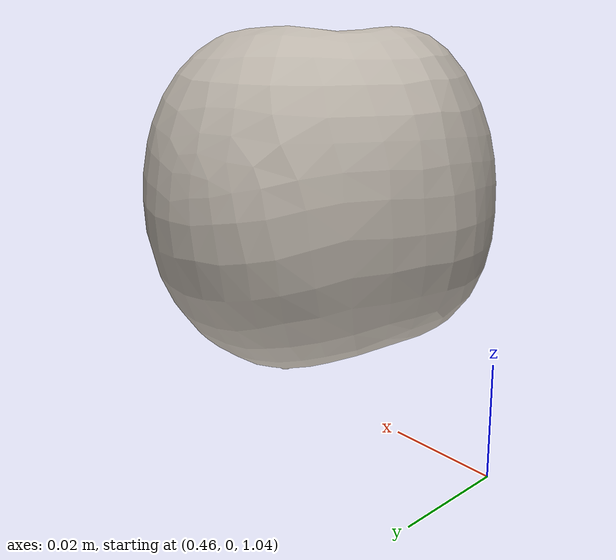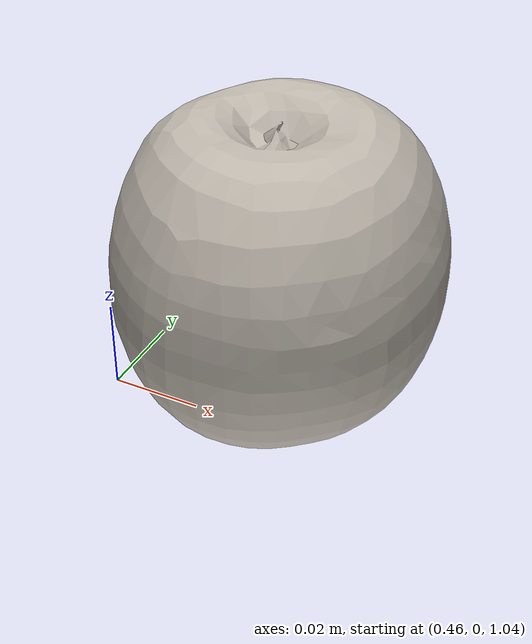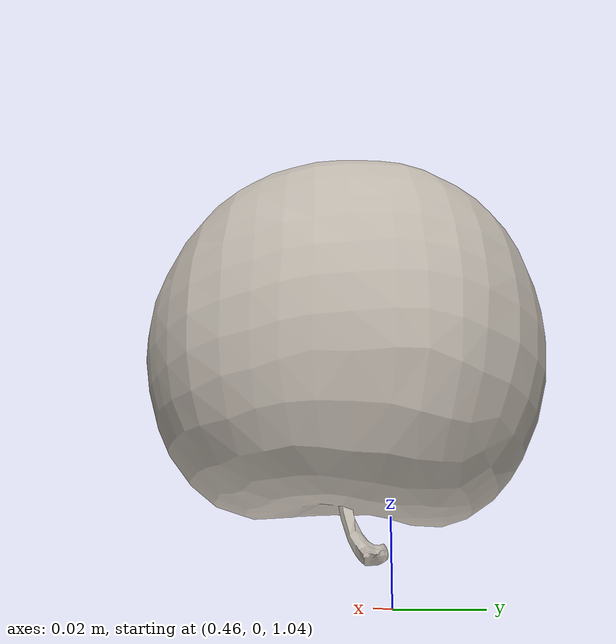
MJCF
<mujoco model="apple_12">
  <asset>
    <mesh file="bigym/apple_6/visual/model_normalized_0.obj" name="model_normalized_0_vis" scale="0.07 0.07 0.07" refquat="1.0 0.0 0.0 0.0"/>
    <mesh file="bigym/apple_6/collision/model_normalized_collision_22.obj" name="model_normalized_collision_22._coll" scale="0.07 0.07 0.07" refquat="1.0 0.0 0.0 0.0"/>
    <mesh file="bigym/apple_6/collision/model_normalized_collision_23.obj" name="model_normalized_collision_23._coll" scale="0.07 0.07 0.07" refquat="1.0 0.0 0.0 0.0"/>
    <mesh file="bigym/apple_6/collision/model_normalized_collision_21.obj" name="model_normalized_collision_21._coll" scale="0.07 0.07 0.07" refquat="1.0 0.0 0.0 0.0"/>
    <mesh file="bigym/apple_6/collision/model_normalized_collision_20.obj" name="model_normalized_collision_20._coll" scale="0.07 0.07 0.07" refquat="1.0 0.0 0.0 0.0"/>
    <mesh file="bigym/apple_6/collision/model_normalized_collision_24.obj" name="model_normalized_collision_24._coll" scale="0.07 0.07 0.07" refquat="1.0 0.0 0.0 0.0"/>
    <mesh file="bigym/apple_6/collision/model_normalized_collision_30.obj" name="model_normalized_collision_30._coll" scale="0.07 0.07 0.07" refquat="1.0 0.0 0.0 0.0"/>
    <mesh file="bigym/apple_6/collision/model_normalized_collision_18.obj" name="model_normalized_collision_18._coll" scale="0.07 0.07 0.07" refquat="1.0 0.0 0.0 0.0"/>
    <mesh file="bigym/apple_6/collision/model_normalized_collision_19.obj" name="model_normalized_collision_19._coll" scale="0.07 0.07 0.07" refquat="1.0 0.0 0.0 0.0"/>
    <mesh file="bigym/apple_6/collision/model_normalized_collision_31.obj" name="model_normalized_collision_31._coll" scale="0.07 0.07 0.07" refquat="1.0 0.0 0.0 0.0"/>
    <mesh file="bigym/apple_6/collision/model_normalized_collision_25.obj" name="model_normalized_collision_25._coll" scale="0.07 0.07 0.07" refquat="1.0 0.0 0.0 0.0"/>
    <mesh file="bigym/apple_6/collision/model_normalized_collision_27.obj" name="model_normalized_collision_27._coll" scale="0.07 0.07 0.07" refquat="1.0 0.0 0.0 0.0"/>
    <mesh file="bigym/apple_6/collision/model_normalized_collision_26.obj" name="model_normalized_collision_26._coll" scale="0.07 0.07 0.07" refquat="1.0 0.0 0.0 0.0"/>
    <mesh file="bigym/apple_6/collision/model_normalized_collision_9.obj" name="model_normalized_collision_9._coll" scale="0.07 0.07 0.07" refquat="1.0 0.0 0.0 0.0"/>
    <mesh file="bigym/apple_6/collision/model_normalized_collision_8.obj" name="model_normalized_collision_8._coll" scale="0.07 0.07 0.07" refquat="1.0 0.0 0.0 0.0"/>
    <mesh file="bigym/apple_6/collision/model_normalized_collision_6.obj" name="model_normalized_collision_6._coll" scale="0.07 0.07 0.07" refquat="1.0 0.0 0.0 0.0"/>
    <mesh file="bigym/apple_6/collision/model_normalized_collision_7.obj" name="model_normalized_collision_7._coll" scale="0.07 0.07 0.07" refquat="1.0 0.0 0.0 0.0"/>
    <mesh file="bigym/apple_6/collision/model_normalized_collision_5.obj" name="model_normalized_collision_5._coll" scale="0.07 0.07 0.07" refquat="1.0 0.0 0.0 0.0"/>
    <mesh file="bigym/apple_6/collision/model_normalized_collision_4.obj" name="model_normalized_collision_4._coll" scale="0.07 0.07 0.07" refquat="1.0 0.0 0.0 0.0"/>
    <mesh file="bigym/apple_6/collision/model_normalized_collision_0.obj" name="model_normalized_collision_0._coll" scale="0.07 0.07 0.07" refquat="1.0 0.0 0.0 0.0"/>
    <mesh file="bigym/apple_6/collision/model_normalized_collision_1.obj" name="model_normalized_collision_1._coll" scale="0.07 0.07 0.07" refquat="1.0 0.0 0.0 0.0"/>
    <mesh file="bigym/apple_6/collision/model_normalized_collision_3.obj" name="model_normalized_collision_3._coll" scale="0.07 0.07 0.07" refquat="1.0 0.0 0.0 0.0"/>
    <mesh file="bigym/apple_6/collision/model_normalized_collision_2.obj" name="model_normalized_collision_2._coll" scale="0.07 0.07 0.07" refquat="1.0 0.0 0.0 0.0"/>
    <mesh file="bigym/apple_6/collision/model_normalized_collision_17.obj" name="model_normalized_collision_17._coll" scale="0.07 0.07 0.07" refquat="1.0 0.0 0.0 0.0"/>
    <mesh file="bigym/apple_6/collision/model_normalized_collision_16.obj" name="model_normalized_collision_16._coll" scale="0.07 0.07 0.07" refquat="1.0 0.0 0.0 0.0"/>
    <mesh file="bigym/apple_6/collision/model_normalized_collision_28.obj" name="model_normalized_collision_28._coll" scale="0.07 0.07 0.07" refquat="1.0 0.0 0.0 0.0"/>
    <mesh file="bigym/apple_6/collision/model_normalized_collision_14.obj" name="model_normalized_collision_14._coll" scale="0.07 0.07 0.07" refquat="1.0 0.0 0.0 0.0"/>
    <mesh file="bigym/apple_6/collision/model_normalized_collision_15.obj" name="model_normalized_collision_15._coll" scale="0.07 0.07 0.07" refquat="1.0 0.0 0.0 0.0"/>
    <mesh file="bigym/apple_6/collision/model_normalized_collision_29.obj" name="model_normalized_collision_29._coll" scale="0.07 0.07 0.07" refquat="1.0 0.0 0.0 0.0"/>
    <mesh file="bigym/apple_6/collision/model_normalized_collision_11.obj" name="model_normalized_collision_11._coll" scale="0.07 0.07 0.07" refquat="1.0 0.0 0.0 0.0"/>
    <mesh file="bigym/apple_6/collision/model_normalized_collision_10.obj" name="model_normalized_collision_10._coll" scale="0.07 0.07 0.07" refquat="1.0 0.0 0.0 0.0"/>
    <mesh file="bigym/apple_6/collision/model_normalized_collision_12.obj" name="model_normalized_collision_12._coll" scale="0.07 0.07 0.07" refquat="1.0 0.0 0.0 0.0"/>
    <mesh file="bigym/apple_6/collision/model_normalized_collision_13.obj" name="model_normalized_collision_13._coll" scale="0.07 0.07 0.07" refquat="1.0 0.0 0.0 0.0"/>
    <texture type="2d" name="image0" file="bigym/apple_6/visual/image0.png"/>
    <material name="Material_35.004" texture="image0" specular="0.5" shininess="0.15999998099999999"/>
  </asset>
  <worldbody>
    <body>
      <freejoint/>
      <body name="object" pos="0.5 0 1.08" quat="0 1 0 0">
        <geom solimp="0.998 0.998 0.001" solref="0.001 1" density="100" friction="0.95 0.3 0.1" type="mesh" mesh="model_normalized_0_vis" conaffinity="0" contype="0" group="1" material="Material_35.004"/>
        <geom solimp="0.998 0.998 0.001" solref="0.001 1" density="100" friction="0.95 0.3 0.1" type="mesh" mesh="model_normalized_collision_22._coll" group="0" rgba="0.8 0.8 0.8 0.0"/>
        <geom solimp="0.998 0.998 0.001" solref="0.001 1" density="100" friction="0.95 0.3 0.1" type="mesh" mesh="model_normalized_collision_23._coll" group="0" rgba="0.8 0.8 0.8 0.0"/>
        <geom solimp="0.998 0.998 0.001" solref="0.001 1" density="100" friction="0.95 0.3 0.1" type="mesh" mesh="model_normalized_collision_21._coll" group="0" rgba="0.8 0.8 0.8 0.0"/>
        <geom solimp="0.998 0.998 0.001" solref="0.001 1" density="100" friction="0.95 0.3 0.1" type="mesh" mesh="model_normalized_collision_20._coll" group="0" rgba="0.8 0.8 0.8 0.0"/>
        <geom solimp="0.998 0.998 0.001" solref="0.001 1" density="100" friction="0.95 0.3 0.1" type="mesh" mesh="model_normalized_collision_24._coll" group="0" rgba="0.8 0.8 0.8 0.0"/>
        <geom solimp="0.998 0.998 0.001" solref="0.001 1" density="100" friction="0.95 0.3 0.1" type="mesh" mesh="model_normalized_collision_30._coll" group="0" rgba="0.8 0.8 0.8 0.0"/>
        <geom solimp="0.998 0.998 0.001" solref="0.001 1" density="100" friction="0.95 0.3 0.1" type="mesh" mesh="model_normalized_collision_18._coll" group="0" rgba="0.8 0.8 0.8 0.0"/>
        <geom solimp="0.998 0.998 0.001" solref="0.001 1" density="100" friction="0.95 0.3 0.1" type="mesh" mesh="model_normalized_collision_19._coll" group="0" rgba="0.8 0.8 0.8 0.0"/>
        <geom solimp="0.998 0.998 0.001" solref="0.001 1" density="100" friction="0.95 0.3 0.1" type="mesh" mesh="model_normalized_collision_31._coll" group="0" rgba="0.8 0.8 0.8 0.0"/>
        <geom solimp="0.998 0.998 0.001" solref="0.001 1" density="100" friction="0.95 0.3 0.1" type="mesh" mesh="model_normalized_collision_25._coll" group="0" rgba="0.8 0.8 0.8 0.0"/>
        <geom solimp="0.998 0.998 0.001" solref="0.001 1" density="100" friction="0.95 0.3 0.1" type="mesh" mesh="model_normalized_collision_27._coll" group="0" rgba="0.8 0.8 0.8 0.0"/>
        <geom solimp="0.998 0.998 0.001" solref="0.001 1" density="100" friction="0.95 0.3 0.1" type="mesh" mesh="model_normalized_collision_26._coll" group="0" rgba="0.8 0.8 0.8 0.0"/>
        <geom solimp="0.998 0.998 0.001" solref="0.001 1" density="100" friction="0.95 0.3 0.1" type="mesh" mesh="model_normalized_collision_9._coll" group="0" rgba="0.8 0.8 0.8 0.0"/>
        <geom solimp="0.998 0.998 0.001" solref="0.001 1" density="100" friction="0.95 0.3 0.1" type="mesh" mesh="model_normalized_collision_8._coll" group="0" rgba="0.8 0.8 0.8 0.0"/>
        <geom solimp="0.998 0.998 0.001" solref="0.001 1" density="100" friction="0.95 0.3 0.1" type="mesh" mesh="model_normalized_collision_6._coll" group="0" rgba="0.8 0.8 0.8 0.0"/>
        <geom solimp="0.998 0.998 0.001" solref="0.001 1" density="100" friction="0.95 0.3 0.1" type="mesh" mesh="model_normalized_collision_7._coll" group="0" rgba="0.8 0.8 0.8 0.0"/>
        <geom solimp="0.998 0.998 0.001" solref="0.001 1" density="100" friction="0.95 0.3 0.1" type="mesh" mesh="model_normalized_collision_5._coll" group="0" rgba="0.8 0.8 0.8 0.0"/>
        <geom solimp="0.998 0.998 0.001" solref="0.001 1" density="100" friction="0.95 0.3 0.1" type="mesh" mesh="model_normalized_collision_4._coll" group="0" rgba="0.8 0.8 0.8 0.0"/>
        <geom solimp="0.998 0.998 0.001" solref="0.001 1" density="100" friction="0.95 0.3 0.1" type="mesh" mesh="model_normalized_collision_0._coll" group="0" rgba="0.8 0.8 0.8 0.0"/>
        <geom solimp="0.998 0.998 0.001" solref="0.001 1" density="100" friction="0.95 0.3 0.1" type="mesh" mesh="model_normalized_collision_1._coll" group="0" rgba="0.8 0.8 0.8 0.0"/>
        <geom solimp="0.998 0.998 0.001" solref="0.001 1" density="100" friction="0.95 0.3 0.1" type="mesh" mesh="model_normalized_collision_3._coll" group="0" rgba="0.8 0.8 0.8 0.0"/>
        <geom solimp="0.998 0.998 0.001" solref="0.001 1" density="100" friction="0.95 0.3 0.1" type="mesh" mesh="model_normalized_collision_2._coll" group="0" rgba="0.8 0.8 0.8 0.0"/>
        <geom solimp="0.998 0.998 0.001" solref="0.001 1" density="100" friction="0.95 0.3 0.1" type="mesh" mesh="model_normalized_collision_17._coll" group="0" rgba="0.8 0.8 0.8 0.0"/>
        <geom solimp="0.998 0.998 0.001" solref="0.001 1" density="100" friction="0.95 0.3 0.1" type="mesh" mesh="model_normalized_collision_16._coll" group="0" rgba="0.8 0.8 0.8 0.0"/>
        <geom solimp="0.998 0.998 0.001" solref="0.001 1" density="100" friction="0.95 0.3 0.1" type="mesh" mesh="model_normalized_collision_28._coll" group="0" rgba="0.8 0.8 0.8 0.0"/>
        <geom solimp="0.998 0.998 0.001" solref="0.001 1" density="100" friction="0.95 0.3 0.1" type="mesh" mesh="model_normalized_collision_14._coll" group="0" rgba="0.8 0.8 0.8 0.0"/>
        <geom solimp="0.998 0.998 0.001" solref="0.001 1" density="100" friction="0.95 0.3 0.1" type="mesh" mesh="model_normalized_collision_15._coll" group="0" rgba="0.8 0.8 0.8 0.0"/>
        <geom solimp="0.998 0.998 0.001" solref="0.001 1" density="100" friction="0.95 0.3 0.1" type="mesh" mesh="model_normalized_collision_29._coll" group="0" rgba="0.8 0.8 0.8 0.0"/>
        <geom solimp="0.998 0.998 0.001" solref="0.001 1" density="100" friction="0.95 0.3 0.1" type="mesh" mesh="model_normalized_collision_11._coll" group="0" rgba="0.8 0.8 0.8 0.0"/>
        <geom solimp="0.998 0.998 0.001" solref="0.001 1" density="100" friction="0.95 0.3 0.1" type="mesh" mesh="model_normalized_collision_10._coll" group="0" rgba="0.8 0.8 0.8 0.0"/>
        <geom solimp="0.998 0.998 0.001" solref="0.001 1" density="100" friction="0.95 0.3 0.1" type="mesh" mesh="model_normalized_collision_12._coll" group="0" rgba="0.8 0.8 0.8 0.0"/>
        <geom solimp="0.998 0.998 0.001" solref="0.001 1" density="100" friction="0.95 0.3 0.1" type="mesh" mesh="model_normalized_collision_13._coll" group="0" rgba="0.8 0.8 0.8 0.0"/>
      </body>
      <site rgba="0 0 0 0" size="0.005" pos="-0.00024928225 2.507294999999882e-05 -0.033476419900000005" name="bottom_site"/>
      <site rgba="0 0 0 0" size="0.005" pos="-0.00024928225 2.507294999999882e-05 0.033662096300000006" name="top_site"/>
      <site rgba="0 0 0 0" size="0.005" pos="0.031477288500000006 0.034458746 9.283819999999971e-05" name="horizontal_radius_site"/>
    </body>
  </worldbody>
</mujoco>
